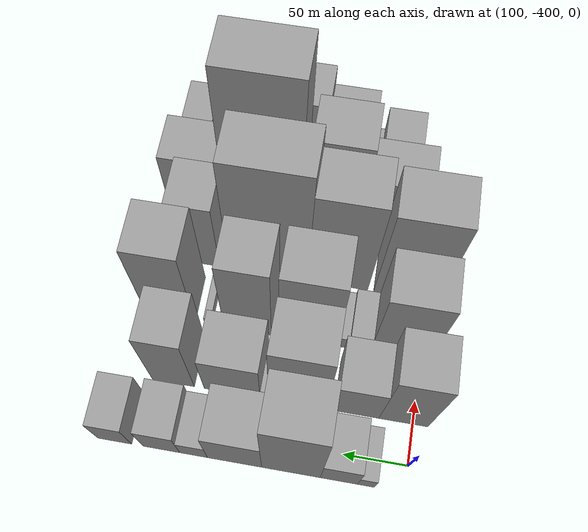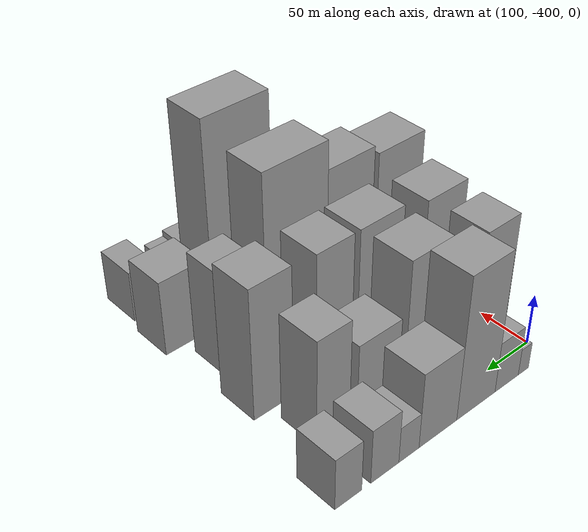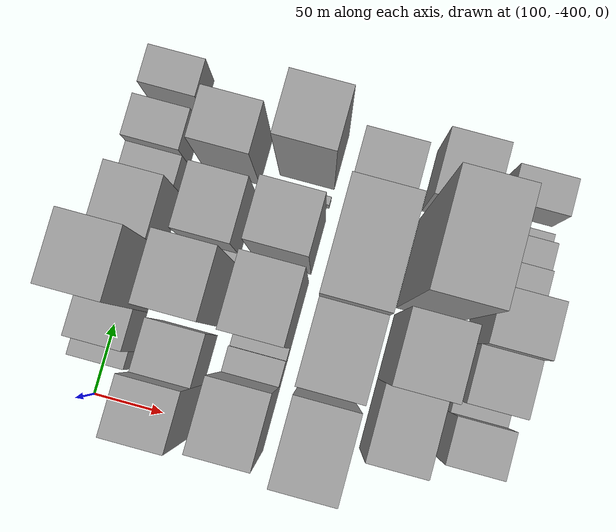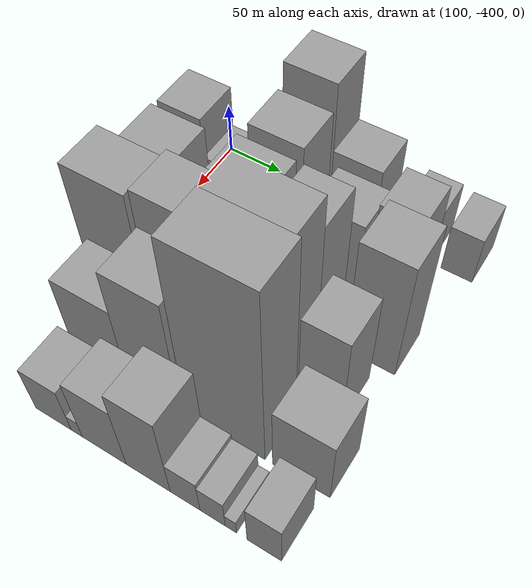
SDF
<sdf version="1.6">
 <world name="default">
  <model name="building_13">
   <static>1</static>
   <pose>100.0000 -370.3168 0 0.000000 0.000000 0.000000</pose>
   <link name="link">
    <pose>0 0 13.50 0 0 0</pose>
    <collision name="collision"><geometry><box><size>40.0000 12.6946 27.0000</size></box></geometry></collision>
    <visual name="visual">
     <cast_shadows>0</cast_shadows>
     <geometry><box><size>40.0000 12.6946 27.0000</size></box></geometry>
     <material>
      <script>
       <uri>model://grey_wall/materials/scripts</uri>
       <uri>model://grey_wall/materials/textures</uri>
       <name>vrc/grey_wall</name>
      </script>
     </material>
    </visual>
   </link>
  </model>
  <model name="building_14">
   <static>1</static>
   <pose>100.0000 -349.7692 0 0.000000 0.000000 0.000000</pose>
   <link name="link">
    <pose>0 0 25.50 0 0 0</pose>
    <collision name="collision"><geometry><box><size>40.0000 28.4006 51.0000</size></box></geometry></collision>
    <visual name="visual">
     <cast_shadows>0</cast_shadows>
     <geometry><box><size>40.0000 28.4006 51.0000</size></box></geometry>
     <material>
      <script>
       <uri>model://grey_wall/materials/scripts</uri>
       <uri>model://grey_wall/materials/textures</uri>
       <name>vrc/grey_wall</name>
      </script>
     </material>
    </visual>
   </link>
  </model>
  <model name="building_15">
   <static>1</static>
   <pose>100.0000 -313.1992 0 0.000000 0.000000 0.000000</pose>
   <link name="link">
    <pose>0 0 70.50 0 0 0</pose>
    <collision name="collision"><geometry><box><size>40.0000 44.7393 141.0000</size></box></geometry></collision>
    <visual name="visual">
     <cast_shadows>0</cast_shadows>
     <geometry><box><size>40.0000 44.7393 141.0000</size></box></geometry>
     <material>
      <script>
       <uri>model://grey_wall/materials/scripts</uri>
       <uri>model://grey_wall/materials/textures</uri>
       <name>vrc/grey_wall</name>
      </script>
     </material>
    </visual>
   </link>
  </model>
  <model name="building_16">
   <static>1</static>
   <pose>100.0000 -269.9063 0 0.000000 0.000000 0.000000</pose>
   <link name="link">
    <pose>0 0 37.50 0 0 0</pose>
    <collision name="collision"><geometry><box><size>40.0000 41.8466 75.0000</size></box></geometry></collision>
    <visual name="visual">
     <cast_shadows>0</cast_shadows>
     <geometry><box><size>40.0000 41.8466 75.0000</size></box></geometry>
     <material>
      <script>
       <uri>model://grey_wall/materials/scripts</uri>
       <uri>model://grey_wall/materials/textures</uri>
       <name>vrc/grey_wall</name>
      </script>
     </material>
    </visual>
   </link>
  </model>
  <model name="building_17">
   <static>1</static>
   <pose>100.0000 -238.2697 0 0.000000 0.000000 0.000000</pose>
   <link name="link">
    <pose>0 0 18.00 0 0 0</pose>
    <collision name="collision"><geometry><box><size>40.0000 21.4265 36.0000</size></box></geometry></collision>
    <visual name="visual">
     <cast_shadows>0</cast_shadows>
     <geometry><box><size>40.0000 21.4265 36.0000</size></box></geometry>
     <material>
      <script>
       <uri>model://grey_wall/materials/scripts</uri>
       <uri>model://grey_wall/materials/textures</uri>
       <name>vrc/grey_wall</name>
      </script>
     </material>
    </visual>
   </link>
  </model>
  <model name="building_18">
   <static>1</static>
   <pose>100.0000 -213.0907 0 0.000000 0.000000 0.000000</pose>
   <link name="link">
    <pose>0 0 27.00 0 0 0</pose>
    <collision name="collision"><geometry><box><size>40.0000 28.9316 54.0000</size></box></geometry></collision>
    <visual name="visual">
     <cast_shadows>0</cast_shadows>
     <geometry><box><size>40.0000 28.9316 54.0000</size></box></geometry>
     <material>
      <script>
       <uri>model://grey_wall/materials/scripts</uri>
       <uri>model://grey_wall/materials/textures</uri>
       <name>vrc/grey_wall</name>
      </script>
     </material>
    </visual>
   </link>
  </model>
  <model name="building_19">
   <static>1</static>
   <pose>100.0000 -176.3862 0 0.000000 0.000000 0.000000</pose>
   <link name="link">
    <pose>0 0 25.50 0 0 0</pose>
    <collision name="collision"><geometry><box><size>40.0000 26.4775 51.0000</size></box></geometry></collision>
    <visual name="visual">
     <cast_shadows>0</cast_shadows>
     <geometry><box><size>40.0000 26.4775 51.0000</size></box></geometry>
     <material>
      <script>
       <uri>model://grey_wall/materials/scripts</uri>
       <uri>model://grey_wall/materials/textures</uri>
       <name>vrc/grey_wall</name>
      </script>
     </material>
    </visual>
   </link>
  </model>
  <model name="building_65">
   <static>1</static>
   <pose>152.0000 -392.7315 0 0.000000 0.000000 0.000000</pose>
   <link name="link">
    <pose>0 0 54.00 0 0 0</pose>
    <collision name="collision"><geometry><box><size>40.0000 38.1709 108.0000</size></box></geometry></collision>
    <visual name="visual">
     <cast_shadows>0</cast_shadows>
     <geometry><box><size>40.0000 38.1709 108.0000</size></box></geometry>
     <material>
      <script>
       <uri>model://grey_wall/materials/scripts</uri>
       <uri>model://grey_wall/materials/textures</uri>
       <name>vrc/grey_wall</name>
      </script>
     </material>
    </visual>
   </link>
  </model>
  <model name="building_66">
   <static>1</static>
   <pose>152.0000 -355.9440 0 0.000000 0.000000 0.000000</pose>
   <link name="link">
    <pose>0 0 34.50 0 0 0</pose>
    <collision name="collision"><geometry><box><size>40.0000 35.4041 69.0000</size></box></geometry></collision>
    <visual name="visual">
     <cast_shadows>0</cast_shadows>
     <geometry><box><size>40.0000 35.4041 69.0000</size></box></geometry>
     <material>
      <script>
       <uri>model://grey_wall/materials/scripts</uri>
       <uri>model://grey_wall/materials/textures</uri>
       <name>vrc/grey_wall</name>
      </script>
     </material>
    </visual>
   </link>
  </model>
  <model name="building_67">
   <static>1</static>
   <pose>152.0000 -309.5828 0 0.000000 0.000000 0.000000</pose>
   <link name="link">
    <pose>0 0 63.00 0 0 0</pose>
    <collision name="collision"><geometry><box><size>40.0000 45.3184 126.0000</size></box></geometry></collision>
    <visual name="visual">
     <cast_shadows>0</cast_shadows>
     <geometry><box><size>40.0000 45.3184 126.0000</size></box></geometry>
     <material>
      <script>
       <uri>model://grey_wall/materials/scripts</uri>
       <uri>model://grey_wall/materials/textures</uri>
       <name>vrc/grey_wall</name>
      </script>
     </material>
    </visual>
   </link>
  </model>
  <model name="building_68">
   <static>1</static>
   <pose>152.0000 -283.4989 0 0.000000 0.000000 0.000000</pose>
   <link name="link">
    <pose>0 0 7.50 0 0 0</pose>
    <collision name="collision"><geometry><box><size>40.0000 6.8493 15.0000</size></box></geometry></collision>
    <visual name="visual">
     <cast_shadows>0</cast_shadows>
     <geometry><box><size>40.0000 6.8493 15.0000</size></box></geometry>
     <material>
      <script>
       <uri>model://grey_wall/materials/scripts</uri>
       <uri>model://grey_wall/materials/textures</uri>
       <name>vrc/grey_wall</name>
      </script>
     </material>
    </visual>
   </link>
  </model>
  <model name="building_69">
   <static>1</static>
   <pose>152.0000 -257.7718 0 0.000000 0.000000 0.000000</pose>
   <link name="link">
    <pose>0 0 37.50 0 0 0</pose>
    <collision name="collision"><geometry><box><size>40.0000 44.6049 75.0000</size></box></geometry></collision>
    <visual name="visual">
     <cast_shadows>0</cast_shadows>
     <geometry><box><size>40.0000 44.6049 75.0000</size></box></geometry>
     <material>
      <script>
       <uri>model://grey_wall/materials/scripts</uri>
       <uri>model://grey_wall/materials/textures</uri>
       <name>vrc/grey_wall</name>
      </script>
     </material>
    </visual>
   </link>
  </model>
  <model name="building_70">
   <static>1</static>
   <pose>152.0000 -210.6001 0 0.000000 0.000000 0.000000</pose>
   <link name="link">
    <pose>0 0 52.50 0 0 0</pose>
    <collision name="collision"><geometry><box><size>40.0000 33.7383 105.0000</size></box></geometry></collision>
    <visual name="visual">
     <cast_shadows>0</cast_shadows>
     <geometry><box><size>40.0000 33.7383 105.0000</size></box></geometry>
     <material>
      <script>
       <uri>model://grey_wall/materials/scripts</uri>
       <uri>model://grey_wall/materials/textures</uri>
       <name>vrc/grey_wall</name>
      </script>
     </material>
    </visual>
   </link>
  </model>
  <model name="building_112">
   <static>1</static>
   <pose>204.0000 -383.6074 0 0.000000 0.000000 0.000000</pose>
   <link name="link">
    <pose>0 0 58.50 0 0 0</pose>
    <collision name="collision"><geometry><box><size>40.0000 46.5537 117.0000</size></box></geometry></collision>
    <visual name="visual">
     <cast_shadows>0</cast_shadows>
     <geometry><box><size>40.0000 46.5537 117.0000</size></box></geometry>
     <material>
      <script>
       <uri>model://grey_wall/materials/scripts</uri>
       <uri>model://grey_wall/materials/textures</uri>
       <name>vrc/grey_wall</name>
      </script>
     </material>
    </visual>
   </link>
  </model>
  <model name="building_113">
   <static>1</static>
   <pose>204.0000 -351.3864 0 0.000000 0.000000 0.000000</pose>
   <link name="link">
    <pose>0 0 15.00 0 0 0</pose>
    <collision name="collision"><geometry><box><size>40.0000 17.8884 30.0000</size></box></geometry></collision>
    <visual name="visual">
     <cast_shadows>0</cast_shadows>
     <geometry><box><size>40.0000 17.8884 30.0000</size></box></geometry>
     <material>
      <script>
       <uri>model://grey_wall/materials/scripts</uri>
       <uri>model://grey_wall/materials/textures</uri>
       <name>vrc/grey_wall</name>
      </script>
     </material>
    </visual>
   </link>
  </model>
  <model name="building_114">
   <static>1</static>
   <pose>204.0000 -337.8575 0 0.000000 0.000000 0.000000</pose>
   <link name="link">
    <pose>0 0 10.50 0 0 0</pose>
    <collision name="collision"><geometry><box><size>40.0000 9.1694 21.0000</size></box></geometry></collision>
    <visual name="visual">
     <cast_shadows>0</cast_shadows>
     <geometry><box><size>40.0000 9.1694 21.0000</size></box></geometry>
     <material>
      <script>
       <uri>model://grey_wall/materials/scripts</uri>
       <uri>model://grey_wall/materials/textures</uri>
       <name>vrc/grey_wall</name>
      </script>
     </material>
    </visual>
   </link>
  </model>
  <model name="building_115">
   <static>1</static>
   <pose>204.0000 -309.4667 0 0.000000 0.000000 0.000000</pose>
   <link name="link">
    <pose>0 0 63.00 0 0 0</pose>
    <collision name="collision"><geometry><box><size>40.0000 47.6123 126.0000</size></box></geometry></collision>
    <visual name="visual">
     <cast_shadows>0</cast_shadows>
     <geometry><box><size>40.0000 47.6123 126.0000</size></box></geometry>
     <material>
      <script>
       <uri>model://grey_wall/materials/scripts</uri>
       <uri>model://grey_wall/materials/textures</uri>
       <name>vrc/grey_wall</name>
      </script>
     </material>
    </visual>
   </link>
  </model>
  <model name="building_116">
   <static>1</static>
   <pose>204.0000 -260.3054 0 0.000000 0.000000 0.000000</pose>
   <link name="link">
    <pose>0 0 63.00 0 0 0</pose>
    <collision name="collision"><geometry><box><size>40.0000 38.7102 126.0000</size></box></geometry></collision>
    <visual name="visual">
     <cast_shadows>0</cast_shadows>
     <geometry><box><size>40.0000 38.7102 126.0000</size></box></geometry>
     <material>
      <script>
       <uri>model://grey_wall/materials/scripts</uri>
       <uri>model://grey_wall/materials/textures</uri>
       <name>vrc/grey_wall</name>
      </script>
     </material>
    </visual>
   </link>
  </model>
  <model name="building_117">
   <static>1</static>
   <pose>204.0000 -227.9271 0 0.000000 0.000000 0.000000</pose>
   <link name="link">
    <pose>0 0 7.50 0 0 0</pose>
    <collision name="collision"><geometry><box><size>40.0000 6.0463 15.0000</size></box></geometry></collision>
    <visual name="visual">
     <cast_shadows>0</cast_shadows>
     <geometry><box><size>40.0000 6.0463 15.0000</size></box></geometry>
     <material>
      <script>
       <uri>model://grey_wall/materials/scripts</uri>
       <uri>model://grey_wall/materials/textures</uri>
       <name>vrc/grey_wall</name>
      </script>
     </material>
    </visual>
   </link>
  </model>
  <model name="building_118">
   <static>1</static>
   <pose>204.0000 -196.7830 0 0.000000 0.000000 0.000000</pose>
   <link name="link">
    <pose>0 0 64.50 0 0 0</pose>
    <collision name="collision"><geometry><box><size>40.0000 40.2419 129.0000</size></box></geometry></collision>
    <visual name="visual">
     <cast_shadows>0</cast_shadows>
     <geometry><box><size>40.0000 40.2419 129.0000</size></box></geometry>
     <material>
      <script>
       <uri>model://grey_wall/materials/scripts</uri>
       <uri>model://grey_wall/materials/textures</uri>
       <name>vrc/grey_wall</name>
      </script>
     </material>
    </visual>
   </link>
  </model>
  <model name="building_162">
   <static>1</static>
   <pose>256.0000 -383.0794 0 0.000000 0.000000 0.000000</pose>
   <link name="link">
    <pose>0 0 69.00 0 0 0</pose>
    <collision name="collision"><geometry><box><size>40.0000 53.0187 138.0000</size></box></geometry></collision>
    <visual name="visual">
     <cast_shadows>0</cast_shadows>
     <geometry><box><size>40.0000 53.0187 138.0000</size></box></geometry>
     <material>
      <script>
       <uri>model://grey_wall/materials/scripts</uri>
       <uri>model://grey_wall/materials/textures</uri>
       <name>vrc/grey_wall</name>
      </script>
     </material>
    </visual>
   </link>
  </model>
  <model name="building_163">
   <static>1</static>
   <pose>256.0000 -326.2078 0 0.000000 0.000000 0.000000</pose>
   <link name="link">
    <pose>0 0 73.50 0 0 0</pose>
    <collision name="collision"><geometry><box><size>40.0000 50.7244 147.0000</size></box></geometry></collision>
    <visual name="visual">
     <cast_shadows>0</cast_shadows>
     <geometry><box><size>40.0000 50.7244 147.0000</size></box></geometry>
     <material>
      <script>
       <uri>model://grey_wall/materials/scripts</uri>
       <uri>model://grey_wall/materials/textures</uri>
       <name>vrc/grey_wall</name>
      </script>
     </material>
    </visual>
   </link>
  </model>
  <model name="building_164">
   <static>1</static>
   <pose>256.0000 -267.7426 0 0.000000 0.000000 0.000000</pose>
   <link name="link">
    <pose>0 0 87.00 0 0 0</pose>
    <collision name="collision"><geometry><box><size>40.0000 66.2061 174.0000</size></box></geometry></collision>
    <visual name="visual">
     <cast_shadows>0</cast_shadows>
     <geometry><box><size>40.0000 66.2061 174.0000</size></box></geometry>
     <material>
      <script>
       <uri>model://grey_wall/materials/scripts</uri>
       <uri>model://grey_wall/materials/textures</uri>
       <name>vrc/grey_wall</name>
      </script>
     </material>
    </visual>
   </link>
  </model>
  <model name="building_165">
   <static>1</static>
   <pose>256.0000 -208.8466 0 0.000000 0.000000 0.000000</pose>
   <link name="link">
    <pose>0 0 51.00 0 0 0</pose>
    <collision name="collision"><geometry><box><size>40.0000 35.5858 102.0000</size></box></geometry></collision>
    <visual name="visual">
     <cast_shadows>0</cast_shadows>
     <geometry><box><size>40.0000 35.5858 102.0000</size></box></geometry>
     <material>
      <script>
       <uri>model://grey_wall/materials/scripts</uri>
       <uri>model://grey_wall/materials/textures</uri>
       <name>vrc/grey_wall</name>
      </script>
     </material>
    </visual>
   </link>
  </model>
  <model name="building_205">
   <static>1</static>
   <pose>308.0000 -362.5122 0 0.000000 0.000000 0.000000</pose>
   <link name="link">
    <pose>0 0 43.50 0 0 0</pose>
    <collision name="collision"><geometry><box><size>40.0000 49.5034 87.0000</size></box></geometry></collision>
    <visual name="visual">
     <cast_shadows>0</cast_shadows>
     <geometry><box><size>40.0000 49.5034 87.0000</size></box></geometry>
     <material>
      <script>
       <uri>model://grey_wall/materials/scripts</uri>
       <uri>model://grey_wall/materials/textures</uri>
       <name>vrc/grey_wall</name>
      </script>
     </material>
    </visual>
   </link>
  </model>
  <model name="building_206">
   <static>1</static>
   <pose>308.0000 -314.7017 0 0.000000 0.000000 0.000000</pose>
   <link name="link">
    <pose>0 0 66.00 0 0 0</pose>
    <collision name="collision"><geometry><box><size>40.0000 46.1176 132.0000</size></box></geometry></collision>
    <visual name="visual">
     <cast_shadows>0</cast_shadows>
     <geometry><box><size>40.0000 46.1176 132.0000</size></box></geometry>
     <material>
      <script>
       <uri>model://grey_wall/materials/scripts</uri>
       <uri>model://grey_wall/materials/textures</uri>
       <name>vrc/grey_wall</name>
      </script>
     </material>
    </visual>
   </link>
  </model>
  <model name="building_207">
   <static>1</static>
   <pose>308.0000 -253.9697 0 0.000000 0.000000 0.000000</pose>
   <link name="link">
    <pose>0 0 100.50 0 0 0</pose>
    <collision name="collision"><geometry><box><size>40.0000 65.3462 201.0000</size></box></geometry></collision>
    <visual name="visual">
     <cast_shadows>0</cast_shadows>
     <geometry><box><size>40.0000 65.3462 201.0000</size></box></geometry>
     <material>
      <script>
       <uri>model://grey_wall/materials/scripts</uri>
       <uri>model://grey_wall/materials/textures</uri>
       <name>vrc/grey_wall</name>
      </script>
     </material>
    </visual>
   </link>
  </model>
  <model name="building_208">
   <static>1</static>
   <pose>308.0000 -192.9649 0 0.000000 0.000000 0.000000</pose>
   <link name="link">
    <pose>0 0 37.50 0 0 0</pose>
    <collision name="collision"><geometry><box><size>40.0000 44.6634 75.0000</size></box></geometry></collision>
    <visual name="visual">
     <cast_shadows>0</cast_shadows>
     <geometry><box><size>40.0000 44.6634 75.0000</size></box></geometry>
     <material>
      <script>
       <uri>model://grey_wall/materials/scripts</uri>
       <uri>model://grey_wall/materials/textures</uri>
       <name>vrc/grey_wall</name>
      </script>
     </material>
    </visual>
   </link>
  </model>
  <model name="building_254">
   <static>1</static>
   <pose>360.0000 -362.5121 0 0.000000 0.000000 0.000000</pose>
   <link name="link">
    <pose>0 0 27.00 0 0 0</pose>
    <collision name="collision"><geometry><box><size>40.0000 31.9723 54.0000</size></box></geometry></collision>
    <visual name="visual">
     <cast_shadows>0</cast_shadows>
     <geometry><box><size>40.0000 31.9723 54.0000</size></box></geometry>
     <material>
      <script>
       <uri>model://grey_wall/materials/scripts</uri>
       <uri>model://grey_wall/materials/textures</uri>
       <name>vrc/grey_wall</name>
      </script>
     </material>
    </visual>
   </link>
  </model>
  <model name="building_255">
   <static>1</static>
   <pose>360.0000 -341.6951 0 0.000000 0.000000 0.000000</pose>
   <link name="link">
    <pose>0 0 10.50 0 0 0</pose>
    <collision name="collision"><geometry><box><size>40.0000 9.6616 21.0000</size></box></geometry></collision>
    <visual name="visual">
     <cast_shadows>0</cast_shadows>
     <geometry><box><size>40.0000 9.6616 21.0000</size></box></geometry>
     <material>
      <script>
       <uri>model://grey_wall/materials/scripts</uri>
       <uri>model://grey_wall/materials/textures</uri>
       <name>vrc/grey_wall</name>
      </script>
     </material>
    </visual>
   </link>
  </model>
  <model name="building_256">
   <static>1</static>
   <pose>360.0000 -317.9074 0 0.000000 0.000000 0.000000</pose>
   <link name="link">
    <pose>0 0 37.50 0 0 0</pose>
    <collision name="collision"><geometry><box><size>40.0000 37.9139 75.0000</size></box></geometry></collision>
    <visual name="visual">
     <cast_shadows>0</cast_shadows>
     <geometry><box><size>40.0000 37.9139 75.0000</size></box></geometry>
     <material>
      <script>
       <uri>model://grey_wall/materials/scripts</uri>
       <uri>model://grey_wall/materials/textures</uri>
       <name>vrc/grey_wall</name>
      </script>
     </material>
    </visual>
   </link>
  </model>
  <model name="building_257">
   <static>1</static>
   <pose>360.0000 -280.6737 0 0.000000 0.000000 0.000000</pose>
   <link name="link">
    <pose>0 0 49.50 0 0 0</pose>
    <collision name="collision"><geometry><box><size>40.0000 36.5536 99.0000</size></box></geometry></collision>
    <visual name="visual">
     <cast_shadows>0</cast_shadows>
     <geometry><box><size>40.0000 36.5536 99.0000</size></box></geometry>
     <material>
      <script>
       <uri>model://grey_wall/materials/scripts</uri>
       <uri>model://grey_wall/materials/textures</uri>
       <name>vrc/grey_wall</name>
      </script>
     </material>
    </visual>
   </link>
  </model>
  <model name="building_258">
   <static>1</static>
   <pose>360.0000 -250.4385 0 0.000000 0.000000 0.000000</pose>
   <link name="link">
    <pose>0 0 21.00 0 0 0</pose>
    <collision name="collision"><geometry><box><size>40.0000 23.9167 42.0000</size></box></geometry></collision>
    <visual name="visual">
     <cast_shadows>0</cast_shadows>
     <geometry><box><size>40.0000 23.9167 42.0000</size></box></geometry>
     <material>
      <script>
       <uri>model://grey_wall/materials/scripts</uri>
       <uri>model://grey_wall/materials/textures</uri>
       <name>vrc/grey_wall</name>
      </script>
     </material>
    </visual>
   </link>
  </model>
  <model name="building_259">
   <static>1</static>
   <pose>360.0000 -228.6071 0 0.000000 0.000000 0.000000</pose>
   <link name="link">
    <pose>0 0 18.00 0 0 0</pose>
    <collision name="collision"><geometry><box><size>40.0000 19.7460 36.0000</size></box></geometry></collision>
    <visual name="visual">
     <cast_shadows>0</cast_shadows>
     <geometry><box><size>40.0000 19.7460 36.0000</size></box></geometry>
     <material>
      <script>
       <uri>model://grey_wall/materials/scripts</uri>
       <uri>model://grey_wall/materials/textures</uri>
       <name>vrc/grey_wall</name>
      </script>
     </material>
    </visual>
   </link>
  </model>
  <model name="building_260">
   <static>1</static>
   <pose>360.0000 -214.3837 0 0.000000 0.000000 0.000000</pose>
   <link name="link">
    <pose>0 0 9.00 0 0 0</pose>
    <collision name="collision"><geometry><box><size>40.0000 8.7007 18.0000</size></box></geometry></collision>
    <visual name="visual">
     <cast_shadows>0</cast_shadows>
     <geometry><box><size>40.0000 8.7007 18.0000</size></box></geometry>
     <material>
      <script>
       <uri>model://grey_wall/materials/scripts</uri>
       <uri>model://grey_wall/materials/textures</uri>
       <name>vrc/grey_wall</name>
      </script>
     </material>
    </visual>
   </link>
  </model>
  <model name="building_261">
   <static>1</static>
   <pose>360.0000 -189.0873 0 0.000000 0.000000 0.000000</pose>
   <link name="link">
    <pose>0 0 25.50 0 0 0</pose>
    <collision name="collision"><geometry><box><size>40.0000 25.8922 51.0000</size></box></geometry></collision>
    <visual name="visual">
     <cast_shadows>0</cast_shadows>
     <geometry><box><size>40.0000 25.8922 51.0000</size></box></geometry>
     <material>
      <script>
       <uri>model://grey_wall/materials/scripts</uri>
       <uri>model://grey_wall/materials/textures</uri>
       <name>vrc/grey_wall</name>
      </script>
     </material>
    </visual>
   </link>
  </model>
 </world>
</sdf>
